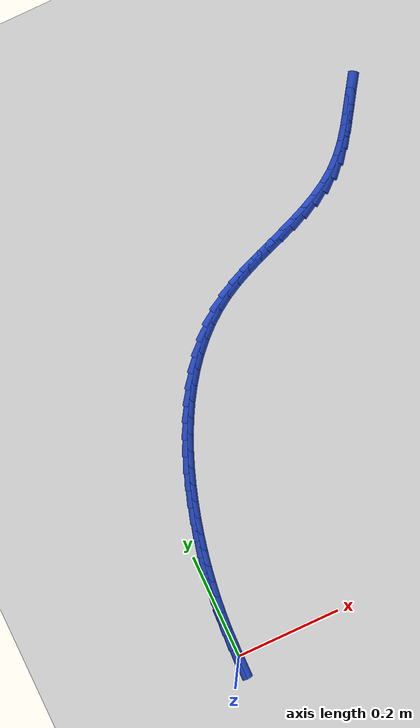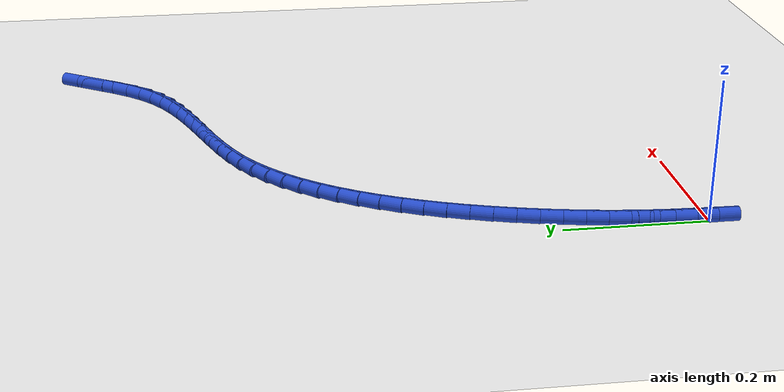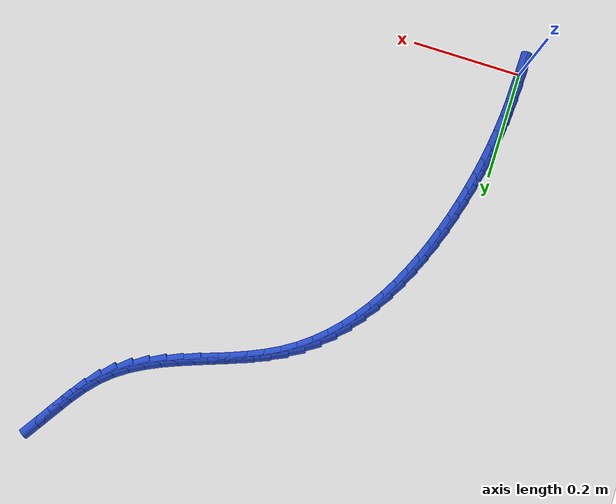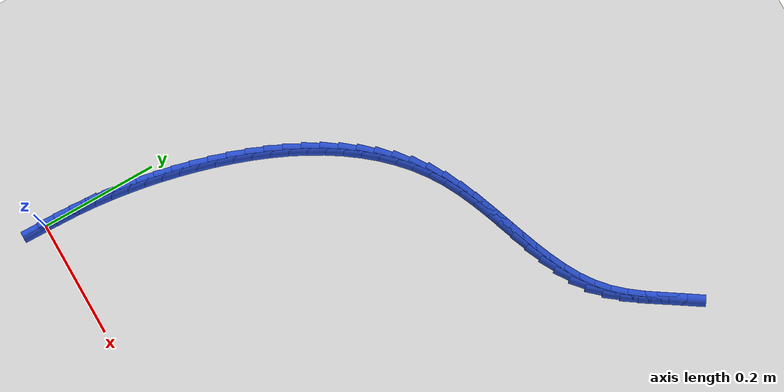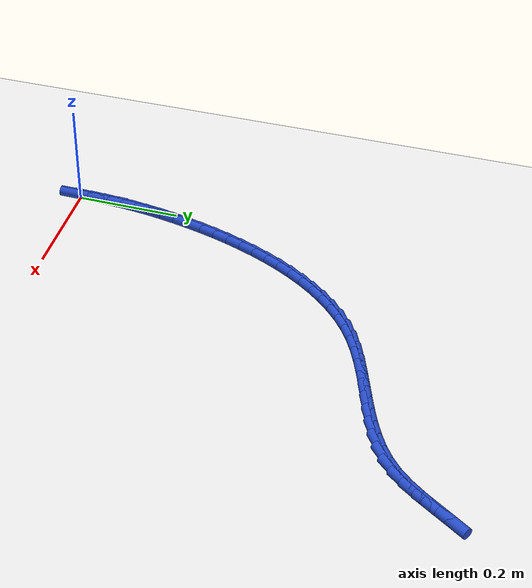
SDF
<sdf version="1.6">
 <world name="default">
  <model name="ground_plane">
   <static>1</static>
   <link name="link">
    <collision name="collision">
     <geometry><plane><normal>0 0 1</normal><size>100 100</size></plane></geometry>
     <surface><friction><ode><mu>100</mu><mu2>50</mu2></ode></friction></surface>
    </collision>
    <visual name="visual">
     <cast_shadows>0</cast_shadows>
     <geometry><plane><normal>0 0 1</normal><size>100 100</size></plane></geometry>
     <material>
      <script><uri>file://media/materials/scripts/gazebo.material</uri><name>Gazebo/WhiteGlow</name></script>
     </material>
    </visual>
   </link>
  </model>
  <model name="line">
   <link name="link_0">
    <pose>2.168404344971009e-18 -6.938893903907228e-18 0.01 0 1.57 1.552432151949508</pose>
    <collision name="collision">
     <geometry><cylinder><radius>0.01</radius><length>0.08</length></cylinder></geometry>
    </collision>
    <visual name="visual">
     <material>
      <script><name>Gazebo/Blue</name><uri>file://media/materials/scripts/gazebo.material</uri></script>
     </material>
     <geometry><cylinder><radius>0.01</radius><length>0.08</length></cylinder></geometry>
    </visual>
   </link>
   <link name="link_1">
    <pose>0.0005430636565950811 0.02956858185407783 0.01 0 1.57 1.5245968007028479</pose>
    <collision name="collision">
     <geometry><cylinder><radius>0.01</radius><length>0.08</length></cylinder></geometry>
    </collision>
    <visual name="visual">
     <material>
      <script><name>Gazebo/Blue</name><uri>file://media/materials/scripts/gazebo.material</uri></script>
     </material>
     <geometry><cylinder><radius>0.01</radius><length>0.08</length></cylinder></geometry>
    </visual>
   </link>
   <link name="link_2">
    <pose>0.001901446916020607 0.058950196645555515 0.01 0 1.57 1.4962083804458244</pose>
    <collision name="collision">
     <geometry><cylinder><radius>0.01</radius><length>0.08</length></cylinder></geometry>
    </collision>
    <visual name="visual">
     <material>
      <script><name>Gazebo/Blue</name><uri>file://media/materials/scripts/gazebo.material</uri></script>
     </material>
     <geometry><cylinder><radius>0.01</radius><length>0.08</length></cylinder></geometry>
    </visual>
   </link>
   <link name="link_3">
    <pose>0.004086540318610927 0.08819137904341232 0.01 0 1.57 1.4674445983608793</pose>
    <collision name="collision">
     <geometry><cylinder><radius>0.01</radius><length>0.08</length></cylinder></geometry>
    </collision>
    <visual name="visual">
     <material>
      <script><name>Gazebo/Blue</name><uri>file://media/materials/scripts/gazebo.material</uri></script>
     </material>
     <geometry><cylinder><radius>0.01</radius><length>0.08</length></cylinder></geometry>
    </visual>
   </link>
   <link name="link_4">
    <pose>0.007109734404700387 0.11733866371662746 0.01 0 1.57 1.438491423683931</pose>
    <collision name="collision">
     <geometry><cylinder><radius>0.01</radius><length>0.08</length></cylinder></geometry>
    </collision>
    <visual name="visual">
     <material>
      <script><name>Gazebo/Blue</name><uri>file://media/materials/scripts/gazebo.material</uri></script>
     </material>
     <geometry><cylinder><radius>0.01</radius><length>0.08</length></cylinder></geometry>
    </visual>
   </link>
   <link name="link_5">
    <pose>0.010982419714623335 0.14643858533418017 0.01 0 1.57 1.409538211780621</pose>
    <collision name="collision">
     <geometry><cylinder><radius>0.01</radius><length>0.08</length></cylinder></geometry>
    </collision>
    <visual name="visual">
     <material>
      <script><name>Gazebo/Blue</name><uri>file://media/materials/scripts/gazebo.material</uri></script>
     </material>
     <geometry><cylinder><radius>0.01</radius><length>0.08</length></cylinder></geometry>
    </visual>
   </link>
   <link name="link_6">
    <pose>0.015715986788714113 0.17553767856504965 0.01 0 1.57 1.3807726272057732</pose>
    <collision name="collision">
     <geometry><cylinder><radius>0.01</radius><length>0.08</length></cylinder></geometry>
    </collision>
    <visual name="visual">
     <material>
      <script><name>Gazebo/Blue</name><uri>file://media/materials/scripts/gazebo.material</uri></script>
     </material>
     <geometry><cylinder><radius>0.01</radius><length>0.08</length></cylinder></geometry>
    </visual>
   </link>
   <link name="link_7">
    <pose>0.021321826167307073 0.2046824780782151 0.01 0 1.57 1.3523756889447778</pose>
    <collision name="collision">
     <geometry><cylinder><radius>0.01</radius><length>0.08</length></cylinder></geometry>
    </collision>
    <visual name="visual">
     <material>
      <script><name>Gazebo/Blue</name><uri>file://media/materials/scripts/gazebo.material</uri></script>
     </material>
     <geometry><cylinder><radius>0.01</radius><length>0.08</length></cylinder></geometry>
    </visual>
   </link>
   <link name="link_8">
    <pose>0.02781132839073656 0.23391951854265577 0.01 0 1.57 1.3244591229529863</pose>
    <collision name="collision">
     <geometry><cylinder><radius>0.01</radius><length>0.08</length></cylinder></geometry>
    </collision>
    <visual name="visual">
     <material>
      <script><name>Gazebo/Blue</name><uri>file://media/materials/scripts/gazebo.material</uri></script>
     </material>
     <geometry><cylinder><radius>0.01</radius><length>0.08</length></cylinder></geometry>
    </visual>
   </link>
   <link name="link_9">
    <pose>0.03519663869131008 0.2632911163498984 0.01 0 1.57 1.2957435349868862</pose>
    <collision name="collision">
     <geometry><cylinder><radius>0.01</radius><length>0.08</length></cylinder></geometry>
    </collision>
    <visual name="visual">
     <material>
      <script><name>Gazebo/Blue</name><uri>file://media/materials/scripts/gazebo.material</uri></script>
     </material>
     <geometry><cylinder><radius>0.01</radius><length>0.08</length></cylinder></geometry>
    </visual>
   </link>
   <link name="link_10">
    <pose>0.04350754858759399 0.29274095568907144 0.01 0 1.57 1.2646491216527687</pose>
    <collision name="collision">
     <geometry><cylinder><radius>0.01</radius><length>0.08</length></cylinder></geometry>
    </collision>
    <visual name="visual">
     <material>
      <script><name>Gazebo/Blue</name><uri>file://media/materials/scripts/gazebo.material</uri></script>
     </material>
     <geometry><cylinder><radius>0.01</radius><length>0.08</length></cylinder></geometry>
    </visual>
   </link>
   <link name="link_11">
    <pose>0.05279165759298627 0.3221131846925495 0.01 0 1.57 1.2308025997931469</pose>
    <collision name="collision">
     <geometry><cylinder><radius>0.01</radius><length>0.08</length></cylinder></geometry>
    </collision>
    <visual name="visual">
     <material>
      <script><name>Gazebo/Blue</name><uri>file://media/materials/scripts/gazebo.material</uri></script>
     </material>
     <geometry><cylinder><radius>0.01</radius><length>0.08</length></cylinder></geometry>
    </visual>
   </link>
   <link name="link_12">
    <pose>0.06309735225541638 0.3512475524396692 0.01 0 1.57 1.1938600088988178</pose>
    <collision name="collision">
     <geometry><cylinder><radius>0.01</radius><length>0.08</length></cylinder></geometry>
    </collision>
    <visual name="visual">
     <material>
      <script><name>Gazebo/Blue</name><uri>file://media/materials/scripts/gazebo.material</uri></script>
     </material>
     <geometry><cylinder><radius>0.01</radius><length>0.08</length></cylinder></geometry>
    </visual>
   </link>
   <link name="link_13">
    <pose>0.07447301912281365 0.3799838080097663 0.01 0 1.57 1.1534460394575619</pose>
    <collision name="collision">
     <geometry><cylinder><radius>0.01</radius><length>0.08</length></cylinder></geometry>
    </collision>
    <visual name="visual">
     <material>
      <script><name>Gazebo/Blue</name><uri>file://media/materials/scripts/gazebo.material</uri></script>
     </material>
     <geometry><cylinder><radius>0.01</radius><length>0.08</length></cylinder></geometry>
    </visual>
   </link>
   <link name="link_14">
    <pose>0.08696704474310744 0.4081617004821769 0.01 0 1.57 1.1091571426501097</pose>
    <collision name="collision">
     <geometry><cylinder><radius>0.01</radius><length>0.08</length></cylinder></geometry>
    </collision>
    <visual name="visual">
     <material>
      <script><name>Gazebo/Blue</name><uri>file://media/materials/scripts/gazebo.material</uri></script>
     </material>
     <geometry><cylinder><radius>0.01</radius><length>0.08</length></cylinder></geometry>
    </visual>
   </link>
   <link name="link_15">
    <pose>0.10062781566422715 0.435620978936237 0.01 0 1.57 1.0605694932200733</pose>
    <collision name="collision">
     <geometry><cylinder><radius>0.01</radius><length>0.08</length></cylinder></geometry>
    </collision>
    <visual name="visual">
     <material>
      <script><name>Gazebo/Blue</name><uri>file://media/materials/scripts/gazebo.material</uri></script>
     </material>
     <geometry><cylinder><radius>0.01</radius><length>0.08</length></cylinder></geometry>
    </visual>
   </link>
   <link name="link_16">
    <pose>0.11550371843410225 0.4622013924512831 0.01 0 1.57 1.0072540861359254</pose>
    <collision name="collision">
     <geometry><cylinder><radius>0.01</radius><length>0.08</length></cylinder></geometry>
    </collision>
    <visual name="visual">
     <material>
      <script><name>Gazebo/Blue</name><uri>file://media/materials/scripts/gazebo.material</uri></script>
     </material>
     <geometry><cylinder><radius>0.01</radius><length>0.08</length></cylinder></geometry>
    </visual>
   </link>
   <link name="link_17">
    <pose>0.13164313960066198 0.4877426901066507 0.01 0 1.57 0.9488017304271342</pose>
    <collision name="collision">
     <geometry><cylinder><radius>0.01</radius><length>0.08</length></cylinder></geometry>
    </collision>
    <visual name="visual">
     <material>
      <script><name>Gazebo/Blue</name><uri>file://media/materials/scripts/gazebo.material</uri></script>
     </material>
     <geometry><cylinder><radius>0.01</radius><length>0.08</length></cylinder></geometry>
    </visual>
   </link>
   <link name="link_18">
    <pose>0.1490944657118359 0.5120846209816764 0.01 0 1.57 0.8848607675296601</pose>
    <collision name="collision">
     <geometry><cylinder><radius>0.01</radius><length>0.08</length></cylinder></geometry>
    </collision>
    <visual name="visual">
     <material>
      <script><name>Gazebo/Blue</name><uri>file://media/materials/scripts/gazebo.material</uri></script>
     </material>
     <geometry><cylinder><radius>0.01</radius><length>0.08</length></cylinder></geometry>
    </visual>
   </link>
   <link name="link_19">
    <pose>0.1679060833155531 0.5350669341556955 0.01 0 1.57 0.8151894248052729</pose>
    <collision name="collision">
     <geometry><cylinder><radius>0.01</radius><length>0.08</length></cylinder></geometry>
    </collision>
    <visual name="visual">
     <material>
      <script><name>Gazebo/Blue</name><uri>file://media/materials/scripts/gazebo.material</uri></script>
     </material>
     <geometry><cylinder><radius>0.01</radius><length>0.08</length></cylinder></geometry>
    </visual>
   </link>
   <link name="link_20">
    <pose>0.18812637895974327 0.556529378708045 0.01 0 1.57 0.7397220529052339</pose>
    <collision name="collision">
     <geometry><cylinder><radius>0.01</radius><length>0.08</length></cylinder></geometry>
    </collision>
    <visual name="visual">
     <material>
      <script><name>Gazebo/Blue</name><uri>file://media/materials/scripts/gazebo.material</uri></script>
     </material>
     <geometry><cylinder><radius>0.01</radius><length>0.08</length></cylinder></geometry>
    </visual>
   </link>
   <link name="link_21">
    <pose>0.20980373919233566 0.5763117037180603 0.01 0 1.57 0.658643427475</pose>
    <collision name="collision">
     <geometry><cylinder><radius>0.01</radius><length>0.08</length></cylinder></geometry>
    </collision>
    <visual name="visual">
     <material>
      <script><name>Gazebo/Blue</name><uri>file://media/materials/scripts/gazebo.material</uri></script>
     </material>
     <geometry><cylinder><radius>0.01</radius><length>0.08</length></cylinder></geometry>
    </visual>
   </link>
   <link name="link_22">
    <pose>0.2329865505612596 0.5942536582650778 0.01 0 1.57 0.5725282802318538</pose>
    <collision name="collision">
     <geometry><cylinder><radius>0.01</radius><length>0.08</length></cylinder></geometry>
    </collision>
    <visual name="visual">
     <material>
      <script><name>Gazebo/Blue</name><uri>file://media/materials/scripts/gazebo.material</uri></script>
     </material>
     <geometry><cylinder><radius>0.01</radius><length>0.08</length></cylinder></geometry>
    </visual>
   </link>
   <link name="link_23">
    <pose>0.25772204115448405 0.6101967047606794 0.01 0 1.57 0.4901279271366909</pose>
    <collision name="collision">
     <geometry><cylinder><radius>0.01</radius><length>0.08</length></cylinder></geometry>
    </collision>
    <visual name="visual">
     <material>
      <script><name>Gazebo/Blue</name><uri>file://media/materials/scripts/gazebo.material</uri></script>
     </material>
     <geometry><cylinder><radius>0.01</radius><length>0.08</length></cylinder></geometry>
    </visual>
   </link>
   <link name="link_24">
    <pose>0.2839254079945096 0.6241775761390692 0.01 0 1.57 0.4267393349831475</pose>
    <collision name="collision">
     <geometry><cylinder><radius>0.01</radius><length>0.08</length></cylinder></geometry>
    </collision>
    <visual name="visual">
     <material>
      <script><name>Gazebo/Blue</name><uri>file://media/materials/scripts/gazebo.material</uri></script>
     </material>
     <geometry><cylinder><radius>0.01</radius><length>0.08</length></cylinder></geometry>
    </visual>
   </link>
   <link name="link_25">
    <pose>0.31125969098995054 0.6366059391681403 0.01 0 1.57 0.3831897071688424</pose>
    <collision name="collision">
     <geometry><cylinder><radius>0.01</radius><length>0.08</length></cylinder></geometry>
    </collision>
    <visual name="visual">
     <material>
      <script><name>Gazebo/Blue</name><uri>file://media/materials/scripts/gazebo.material</uri></script>
     </material>
     <geometry><cylinder><radius>0.01</radius><length>0.08</length></cylinder></geometry>
    </visual>
   </link>
   <link name="link_26">
    <pose>0.3393595455488783 0.6479334405561584 0.01 0 1.57 0.3584862747002532</pose>
    <collision name="collision">
     <geometry><cylinder><radius>0.01</radius><length>0.08</length></cylinder></geometry>
    </collision>
    <visual name="visual">
     <material>
      <script><name>Gazebo/Blue</name><uri>file://media/materials/scripts/gazebo.material</uri></script>
     </material>
     <geometry><cylinder><radius>0.01</radius><length>0.08</length></cylinder></geometry>
    </visual>
   </link>
   <link name="link_27">
    <pose>0.36785962707936376 0.6586117270113878 0.01 0 1.57 0.35199758253719793</pose>
    <collision name="collision">
     <geometry><cylinder><radius>0.01</radius><length>0.08</length></cylinder></geometry>
    </collision>
    <visual name="visual">
     <material>
      <script><name>Gazebo/Blue</name><uri>file://media/materials/scripts/gazebo.material</uri></script>
     </material>
     <geometry><cylinder><radius>0.01</radius><length>0.08</length></cylinder></geometry>
    </visual>
   </link>
   <link name="link_28">
    <pose>0.3963945909894785 0.6690924452420933 0.01 0 1.57 0.363676257050509</pose>
    <collision name="collision">
     <geometry><cylinder><radius>0.01</radius><length>0.08</length></cylinder></geometry>
    </collision>
    <visual name="visual">
     <material>
      <script><name>Gazebo/Blue</name><uri>file://media/materials/scripts/gazebo.material</uri></script>
     </material>
     <geometry><cylinder><radius>0.01</radius><length>0.08</length></cylinder></geometry>
    </visual>
   </link>
   <link name="link_29">
    <pose>0.42459909268729357 0.6798272419565402 0.01 0 1.57 0.39412701709626485</pose>
    <collision name="collision">
     <geometry><cylinder><radius>0.01</radius><length>0.08</length></cylinder></geometry>
    </collision>
    <visual name="visual">
     <material>
      <script><name>Gazebo/Blue</name><uri>file://media/materials/scripts/gazebo.material</uri></script>
     </material>
     <geometry><cylinder><radius>0.01</radius><length>0.08</length></cylinder></geometry>
    </visual>
   </link>
   <link name="link_30">
    <pose>0.45210778758088016 0.6912677638629928 0.01 0 1.57 0.4445371107475938</pose>
    <collision name="collision">
     <geometry><cylinder><radius>0.01</radius><length>0.08</length></cylinder></geometry>
    </collision>
    <visual name="visual">
     <material>
      <script><name>Gazebo/Blue</name><uri>file://media/materials/scripts/gazebo.material</uri></script>
     </material>
     <geometry><cylinder><radius>0.01</radius><length>0.08</length></cylinder></geometry>
    </visual>
   </link>
   <link name="link_31">
    <pose>0.4785553310783092 0.7038656576697161 0.01 0 1.57 0.5164052948168326</pose>
    <collision name="collision">
     <geometry><cylinder><radius>0.01</radius><length>0.08</length></cylinder></geometry>
    </collision>
    <visual name="visual">
     <material>
      <script><name>Gazebo/Blue</name><uri>file://media/materials/scripts/gazebo.material</uri></script>
     </material>
     <geometry><cylinder><radius>0.01</radius><length>0.08</length></cylinder></geometry>
    </visual>
   </link>
   <link name="link_32">
    <pose>0.5035763785876523 0.718072570084975 0.01 0 1.57 0.6109320187012139</pose>
    <collision name="collision">
     <geometry><cylinder><radius>0.01</radius><length>0.08</length></cylinder></geometry>
    </collision>
    <visual name="visual">
     <material>
      <script><name>Gazebo/Blue</name><uri>file://media/materials/scripts/gazebo.material</uri></script>
     </material>
     <geometry><cylinder><radius>0.01</radius><length>0.08</length></cylinder></geometry>
    </visual>
   </link>
   <link name="link_33">
    <pose>0.5268055855169804 0.7343401478170343 0.01 0 1.57 0.7276663670533404</pose>
    <collision name="collision">
     <geometry><cylinder><radius>0.01</radius><length>0.08</length></cylinder></geometry>
    </collision>
    <visual name="visual">
     <material>
      <script><name>Gazebo/Blue</name><uri>file://media/materials/scripts/gazebo.material</uri></script>
     </material>
     <geometry><cylinder><radius>0.01</radius><length>0.08</length></cylinder></geometry>
    </visual>
   </link>
   <link name="link_34">
    <pose>0.5478832615185447 0.7531145332309316 0.01 0 1.57 0.845127359304378</pose>
    <collision name="collision">
     <geometry><cylinder><radius>0.01</radius><length>0.08</length></cylinder></geometry>
    </collision>
    <visual name="visual">
     <material>
      <script><name>Gazebo/Blue</name><uri>file://media/materials/scripts/gazebo.material</uri></script>
     </material>
     <geometry><cylinder><radius>0.01</radius><length>0.08</length></cylinder></geometry>
    </visual>
   </link>
   <link name="link_35">
    <pose>0.5668301064734417 0.7744715630746686 0.01 0 1.57 0.9303539195746711</pose>
    <collision name="collision">
     <geometry><cylinder><radius>0.01</radius><length>0.08</length></cylinder></geometry>
    </collision>
    <visual name="visual">
     <material>
      <script><name>Gazebo/Blue</name><uri>file://media/materials/scripts/gazebo.material</uri></script>
     </material>
     <geometry><cylinder><radius>0.01</radius><length>0.08</length></cylinder></geometry>
    </visual>
   </link>
   <link name="link_36">
    <pose>0.584281379478836 0.7978888075992316 0.01 0 1.57 0.9815036223953305</pose>
    <collision name="collision">
     <geometry><cylinder><radius>0.01</radius><length>0.08</length></cylinder></geometry>
    </collision>
    <visual name="visual">
     <material>
      <script><name>Gazebo/Blue</name><uri>file://media/materials/scripts/gazebo.material</uri></script>
     </material>
     <geometry><cylinder><radius>0.01</radius><length>0.08</length></cylinder></geometry>
    </visual>
   </link>
   <link name="link_37">
    <pose>0.6009282330927199 0.8227894253990211 0.01 0 1.57 1.001015654956713</pose>
    <collision name="collision">
     <geometry><cylinder><radius>0.01</radius><length>0.08</length></cylinder></geometry>
    </collision>
    <visual name="visual">
     <material>
      <script><name>Gazebo/Blue</name><uri>file://media/materials/scripts/gazebo.material</uri></script>
     </material>
     <geometry><cylinder><radius>0.01</radius><length>0.08</length></cylinder></geometry>
    </visual>
   </link>
   <link name="link_38">
    <pose>0.6174618198730861 0.8485965750684389 0.01 0 1.57 0.9932530872668094</pose>
    <collision name="collision">
     <geometry><cylinder><radius>0.01</radius><length>0.08</length></cylinder></geometry>
    </collision>
    <visual name="visual">
     <material>
      <script><name>Gazebo/Blue</name><uri>file://media/materials/scripts/gazebo.material</uri></script>
     </material>
     <geometry><cylinder><radius>0.01</radius><length>0.08</length></cylinder></geometry>
    </visual>
   </link>
   <link name="link_250">
    <pose>-8.673617379884035e-18 1.8041124150158794e-16 0.01 0 1.57 1.5526738584155775</pose>
    <collision name="collision">
     <geometry><cylinder><radius>0.01</radius><length>0.08</length></cylinder></geometry>
    </collision>
    <visual name="visual">
     <material>
      <script><name>Gazebo/Blue</name><uri>file://media/materials/scripts/gazebo.material</uri></script>
     </material>
     <geometry><cylinder><radius>0.01</radius><length>0.08</length></cylinder></geometry>
    </visual>
   </link>
   <link name="link_251">
    <pose>0.0005354166716549187 0.029541122358683156 0.01 0 1.57 1.526123045032166</pose>
    <collision name="collision">
     <geometry><cylinder><radius>0.01</radius><length>0.08</length></cylinder></geometry>
    </collision>
    <visual name="visual">
     <material>
      <script><name>Gazebo/Blue</name><uri>file://media/materials/scripts/gazebo.material</uri></script>
     </material>
     <geometry><cylinder><radius>0.01</radius><length>0.08</length></cylinder></geometry>
    </visual>
   </link>
   <link name="link_252">
    <pose>0.001840271036499348 0.058730520682396856 0.01 0 1.57 1.5394724241207012</pose>
    <collision name="collision">
     <geometry><cylinder><radius>0.01</radius><length>0.08</length></cylinder></geometry>
    </collision>
    <visual name="visual">
     <material>
      <script><name>Gazebo/Blue</name><uri>file://media/materials/scripts/gazebo.material</uri></script>
     </material>
     <geometry><cylinder><radius>0.01</radius><length>0.08</length></cylinder></geometry>
    </visual>
   </link>
  </model>
 </world>
</sdf>
